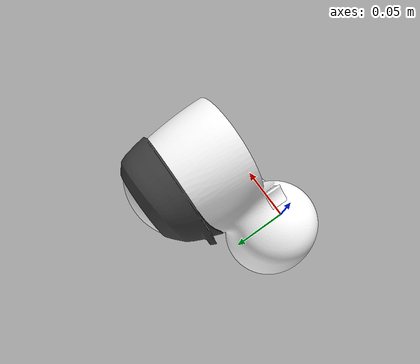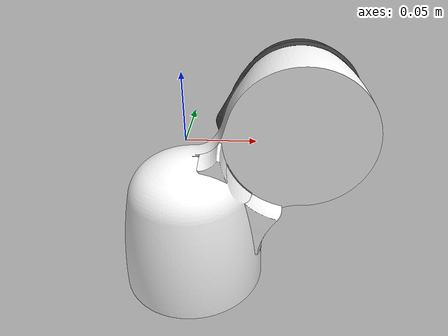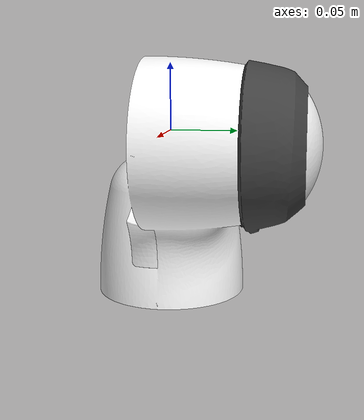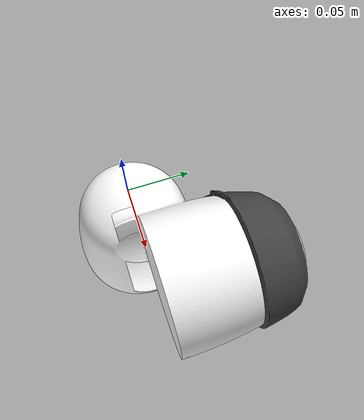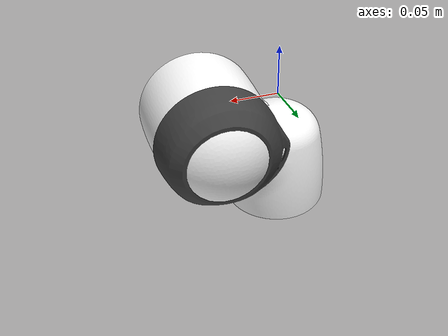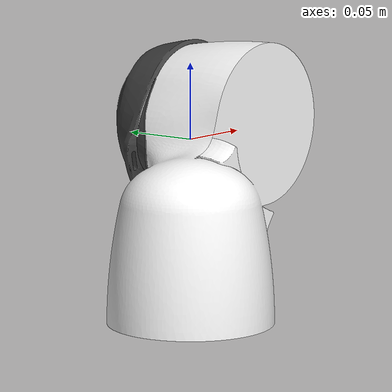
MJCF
<mujoco model="link3_vis">
  <default>
    <default class="visual">
      <geom group="2" type="mesh" contype="0" conaffinity="0"/>
    </default>
    <default class="collision">
      <geom group="3" type="mesh"/>
    </default>
  </default>
  <asset>
    <material name="Part__Feature001_010_001_002" specular="0.5" shininess="0.225" rgba="1.000000 1.000000 1.000000 1.000000"/>
    <material name="Part__Feature002_007_001_002" specular="0.5" shininess="0.225" rgba="1.000000 1.000000 1.000000 1.000000"/>
    <material name="Part__Feature003_004_001_002" specular="0.5" shininess="0.225" rgba="1.000000 1.000000 1.000000 1.000000"/>
    <material name="Part__Feature_001_001_001_002" specular="0.5" shininess="0.225" rgba="0.250980 0.250980 0.250980 1.000000"/>
    <mesh file="link3_vis_0.obj"/>
    <mesh file="link3_vis_1.obj"/>
    <mesh file="link3_vis_2.obj"/>
    <mesh file="link3_vis_3.obj"/>
  </asset>
  <worldbody>
    <body name="link3_vis">
      <geom mesh="link3_vis_0" material="Part__Feature003_004_001_002" class="visual"/>
      <geom mesh="link3_vis_1" material="Part__Feature002_007_001_002" class="visual"/>
      <geom mesh="link3_vis_2" material="Part__Feature001_010_001_002" class="visual"/>
      <geom mesh="link3_vis_3" material="Part__Feature_001_001_001_002" class="visual"/>
      <geom mesh="link3_vis_0" class="collision"/>
      <geom mesh="link3_vis_1" class="collision"/>
      <geom mesh="link3_vis_2" class="collision"/>
      <geom mesh="link3_vis_3" class="collision"/>
    </body>
  </worldbody>
</mujoco>
